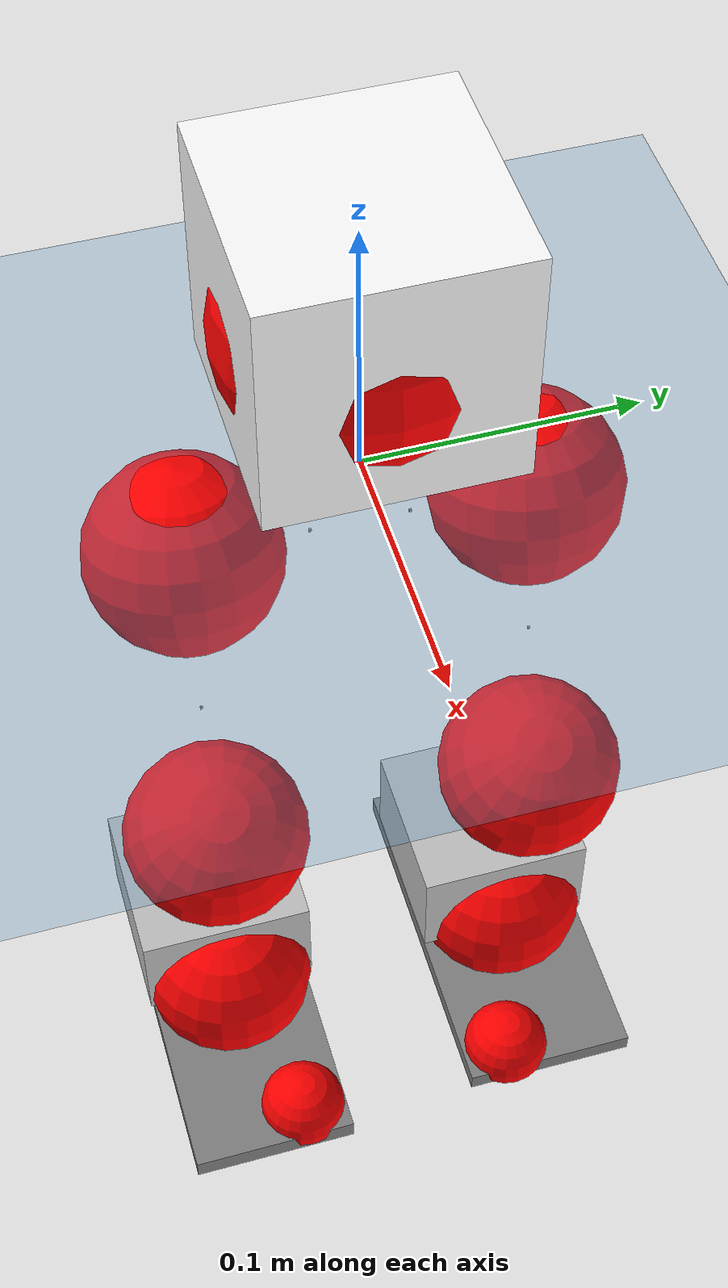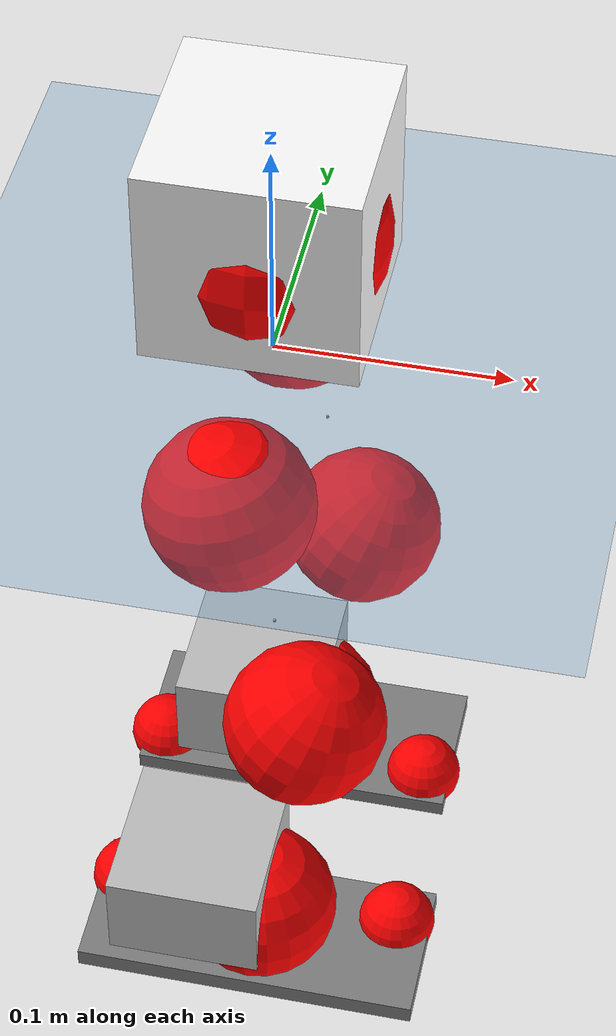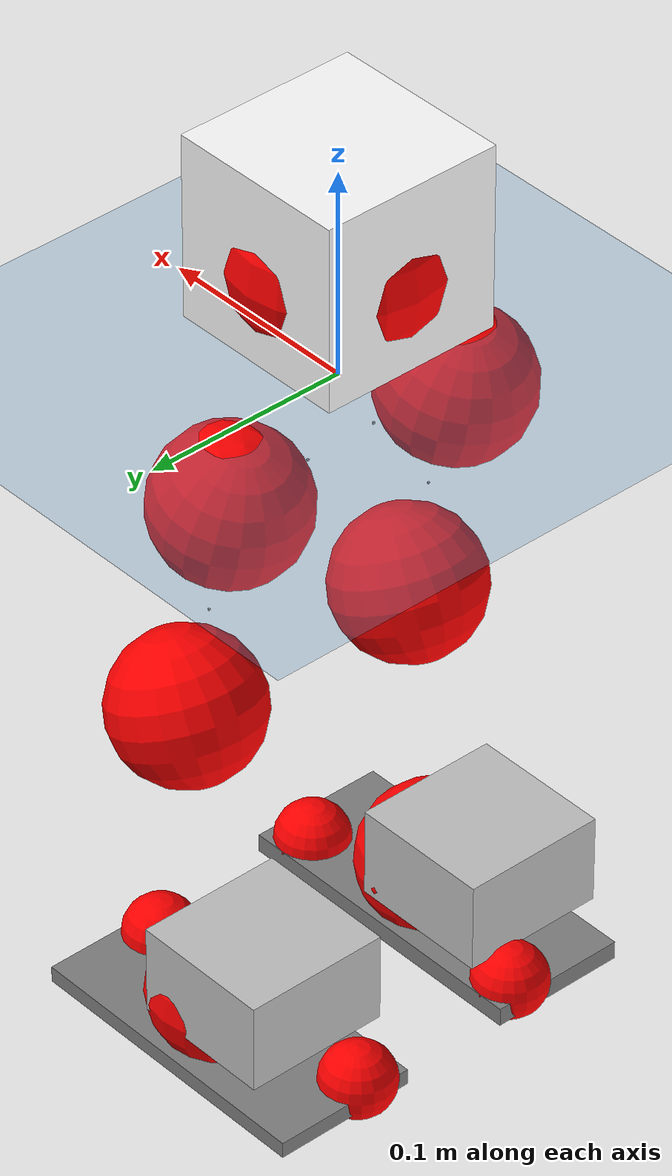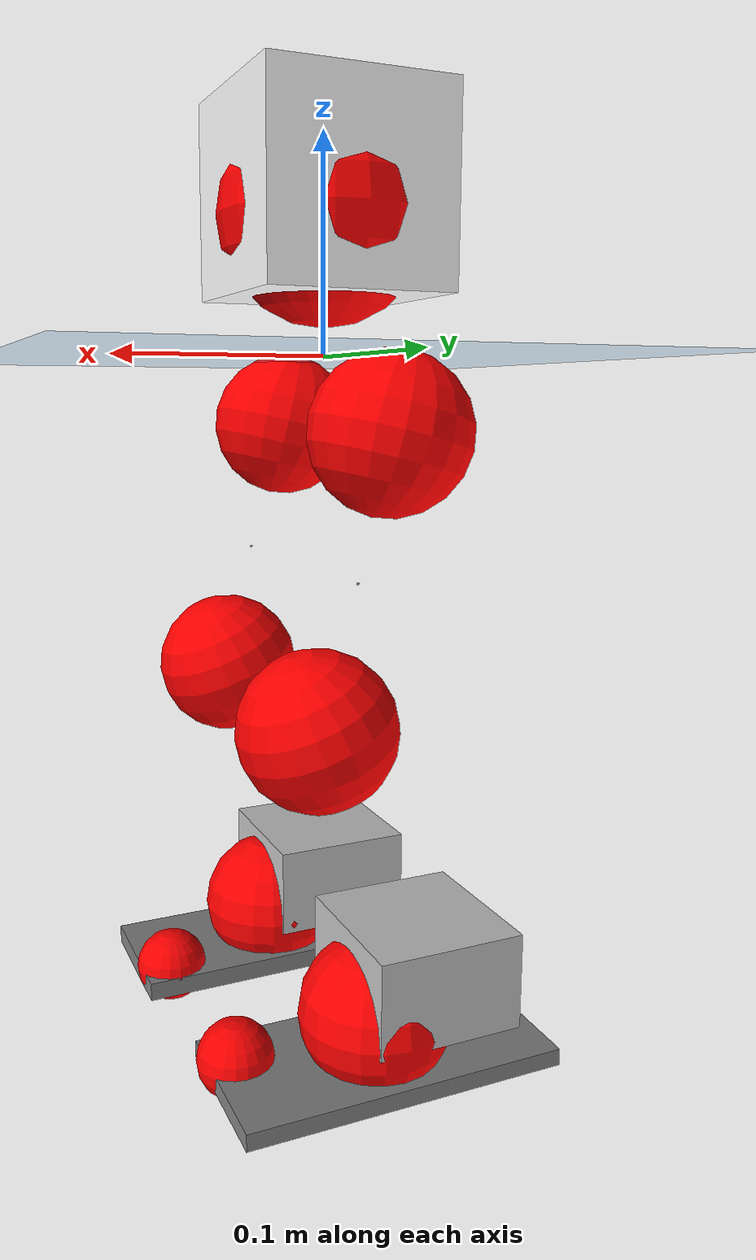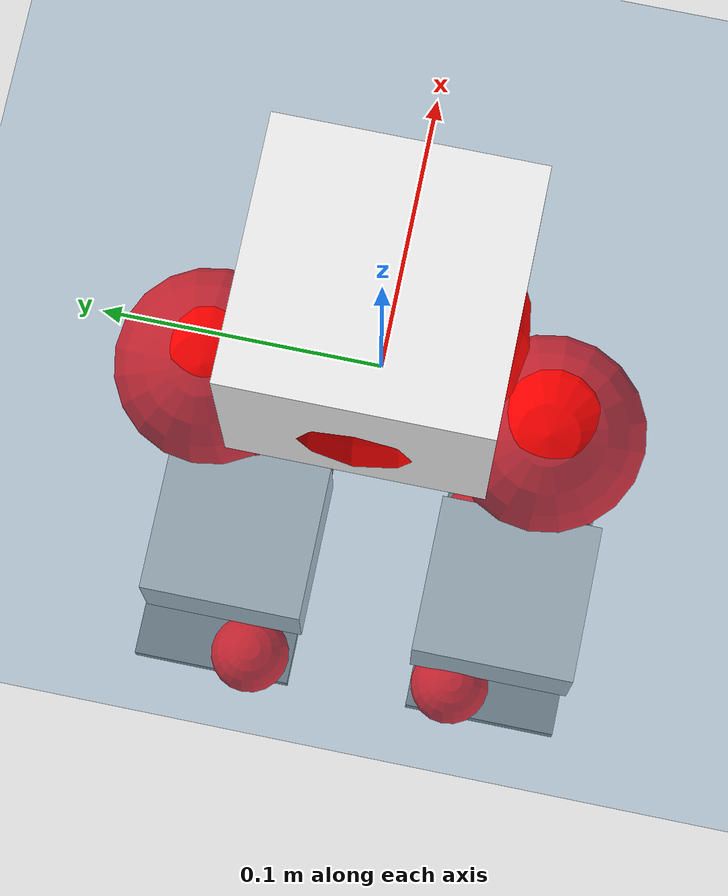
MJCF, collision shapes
<mujoco model="pi_12dof_release_v1">
  <compiler angle="radian" assetdir="assets" balanceinertia="true" inertiafromgeom="false"/>

  <option timestep="0.005" density="1.2" viscosity="2e-05"/>

  <size nkey="1"/>

  <visual>
    <quality shadowsize="8192"/>
    <map shadowclip="0.5"/>
  </visual>

  <default>
    <default class="/">
      <joint armature="0.01" damping="0.01" frictionloss="0.01"/>
      <geom contype="0" conaffinity="0" group="1" solref="-1000 -80"/>
      <site size="0.01 0.005 0.005" group="5"/>
      <general forcelimited="true" biastype="affine" gainprm="20" biasprm="0 -20 -0.5"/>
      <default class="foot">
        <geom size="0.0845 0.036 0.005" type="box" condim="6" group="4" priority="1" friction="0.9 0.2 0.2" solimp="0.015 1 0.005"/>
      </default>
      <default class="reward_collision_sphere">
        <geom group="5" rgba="1 0 0 1"/>
      </default>
    </default>
  </default>

  <asset>
    <texture type="skybox" colorspace="auto" name="//unnamed_texture_0" builtin="gradient" rgb1="0.95 0.95 0.95" rgb2="0.95 0.95 0.95" width="100" height="600"/>
    <texture type="2d" colorspace="auto" name="texplane" builtin="checker" rgb1="0.345 0.575 0.748" rgb2="0.345 0.575 0.748" markrgb="1 1 1" width="512" height="512"/>
    <material name="MatPlane" class="/" texture="texplane" texuniform="true" texrepeat="2 2" specular="0.9"/>
    <mesh name="baselink_1" class="/" file="baselink_1.STL"/>
    <mesh name="r_hip_pitch_link" class="/" file="r_hip_pitch_link.STL"/>
    <mesh name="r_hip_roll_link" class="/" file="r_hip_roll_link.STL"/>
    <mesh name="r_thigh_link" class="/" file="r_thigh_link.STL"/>
    <mesh name="r_calf_link" class="/" file="r_calf_link.STL"/>
    <mesh name="r_ankle_pitch_link" class="/" file="r_ankle_pitch_link.STL"/>
    <mesh name="r_ankle_roll_link" class="/" file="r_ankle_roll_link.STL"/>
    <mesh name="l_hip_pitch_link" class="/" file="l_hip_pitch_link.STL"/>
    <mesh name="l_hip_roll_link" class="/" file="l_hip_roll_link.STL"/>
    <mesh name="l_thigh_link" class="/" file="l_thigh_link.STL"/>
    <mesh name="l_calf_link" class="/" file="l_calf_link.STL"/>
    <mesh name="l_ankle_pitch_link" class="/" file="l_ankle_pitch_link.STL"/>
    <mesh name="l_ankle_roll_link" class="/" file="l_ankle_roll_link.STL"/>
  </asset>

  <worldbody>
    <geom name="floor" class="/" size="100 100 0.125" type="plane" group="0" material="MatPlane"/>
    <light name="toplight_shadow" class="/" pos="0 0 5" dir="0.0990148 0.0990148 -0.990148" type="directional" ambient="0.04 0.04 0.04" diffuse="0.55 0.55 0.55" specular="0.12 0.12 0.12"/>
    <light name="toplight_fill" class="/" pos="0 0 5" dir="0.0990148 0.0990148 -0.990148" type="directional" castshadow="false" ambient="0.04 0.04 0.04" diffuse="0.3 0.3 0.3" specular="0.08 0.08 0.08"/>
    <body name="trunk" pos="-0.000169457 9.25201e-05 -0.00204041" quat="1 -0.000191697 -0.00014277 7.51784e-06">
      <inertial pos="-0.000251826 -0.00337728 0.037437" quat="0.696416 0.0109159 0.0101876 0.717483" mass="1.54767" diaginertia="0.00816638 0.00322037 0.00282988"/>
      <joint name="//unnamed_joint_0" type="free"/>
      <geom name="//unnamed_geom_1" class="/" type="mesh" density="0" rgba="1 1 1 1" mesh="baselink_1"/>
      <geom name="//unnamed_geom_2" class="/" size="0.0447425 0.0447425 0.0447425" pos="0 0 0.0735111" type="box" rgba="1 1 1 1"/>
      <geom name="//unnamed_geom_3" class="reward_collision_sphere" size="0.0492168" pos="0 0 0.0643222"/>
      <site name="imu" class="/" pos="-0.0131445 0.0038931 0.0135149" size="0.0089485"/>
      <camera name="track" class="/" pos="0 -1.61724 0" quat="0.707107 0.707107 0 0" mode="trackcom"/>
      <camera name="ego_camera" class="/" pos="0.0717781 0 0.1654" quat="-0.5 -0.5 0.5 0.5"/>
      <body name="r_hip_pitch_link" pos="-0.0024859 -0.0173948 -0.0298988" quat="0.992219 0.000638195 -0.124506 0.000106245">
        <inertial pos="0.00370862 -0.0466206 -0.000163948" quat="-0.0223518 0.701474 -0.0272824 0.711822" mass="0.254387" diaginertia="8.36196e-05 3.35903e-05 5.36712e-05"/>
        <joint name="r_hip_pitch_joint" class="/" pos="0 0 0" axis="0.00493159 -0.999944 0.00939094" stiffness="0.0108857" range="-1.74969 1.19494" armature="0.00880063" damping="0.000144706" frictionloss="0.00913525"/>
        <geom name="//unnamed_geom_4" class="/" type="mesh" density="0" rgba="0.75294 0.75294 0.75294 1" mesh="r_hip_pitch_link"/>
        <geom name="//unnamed_geom_5" class="/" size="0.000447425 0.000447425 0.000447425" type="box" rgba="0.75294 0.75294 0.75294 1"/>
        <body name="r_hip_roll_link" pos="-0.00170352 -0.0446488 0.000346403" quat="1 -1.73082e-05 -2.57378e-05 -1.13074e-05">
          <inertial pos="-0.000644934 -0.000315772 -0.0536487" quat="0.70782 -0.077529 -0.0854811 0.696902" mass="0.284519" diaginertia="0.000259821 9.62771e-05 8.54291e-05"/>
          <joint name="r_hip_roll_joint" class="/" pos="0 0 0" axis="-0.999925 0.00649672 0.0103387" stiffness="0.00178807" range="-0.174967 0.490016" armature="0.00886462" damping="0.0102842" frictionloss="0.0099518"/>
          <geom name="//unnamed_geom_6" class="/" type="mesh" density="0" rgba="0.75294 0.75294 0.75294 1" mesh="r_hip_roll_link"/>
          <geom name="//unnamed_geom_7" class="/" size="0.000447425 0.000447425 0.000447425" type="box" rgba="0.75294 0.75294 0.75294 1"/>
          <geom name="//unnamed_geom_8" class="reward_collision_sphere" size="0.035794"/>
          <body name="r_thigh_link" pos="0.0021572 -0.00186658 -0.0660514" quat="0.999999 0.000813817 0.000312144 -0.000802189">
            <inertial pos="0.00103954 0.0012037 -0.0426803" quat="0.73569 0.677306 0.00408259 -0.00104854" mass="0.079145" diaginertia="9.88388e-05 3.25335e-05 3.79233e-05"/>
            <joint name="r_thigh_joint" class="/" pos="0 0 0" axis="-0.00526609 -0.0105862 -0.99993" range="-0.30829 0.58441" armature="0.00869653" damping="0.000617181" frictionloss="0.00852417"/>
            <geom name="//unnamed_geom_9" class="/" type="mesh" density="0" rgba="0.75294 0.75294 0.75294 1" mesh="r_thigh_link"/>
            <geom name="//unnamed_geom_10" class="/" size="0.000447425 0.000447425 0.000447425" type="box" rgba="0.75294 0.75294 0.75294 1"/>
            <body name="r_calf_link" pos="-0.00227734 -0.00126115 -0.0629902" quat="0.947576 -0.000110323 0.31953 0.000100134">
              <inertial pos="0.00230673 -0.000969523 -0.0639464" quat="0.99999 -0.00222536 0.000844381 0.00382441" mass="0.60226" diaginertia="0.00287241 0.00125385 0.000116987"/>
              <joint name="r_calf_joint" class="/" pos="0 0 0" axis="-0.00533186 -0.999986 0.000568335" range="-1.6504 0.670967" armature="0.0081286" damping="0.0170896" frictionloss="0.0086237"/>
              <geom name="//unnamed_geom_11" class="/" type="mesh" density="0" rgba="0.75294 0.75294 0.75294 1" mesh="r_calf_link"/>
              <geom name="//unnamed_geom_12" class="/" size="0.000447425 0.000447425 0.000447425" type="box" rgba="0.75294 0.75294 0.75294 1"/>
              <geom name="//unnamed_geom_13" class="reward_collision_sphere" size="0.035794"/>
              <body name="r_ankle_pitch_link" pos="5.45079e-05 0.00280381 -0.129695" quat="0.980093 6.18585e-05 -0.198538 9.54112e-05">
                <inertial pos="0.0047525 0.00193943 -6.42037e-05" quat="0.00489315 0.698779 0.00361667 0.715312" mass="0.118155" diaginertia="0.000239024 7.59847e-05 7.66688e-05"/>
                <joint name="r_ankle_pitch_joint" class="/" pos="0 0 0" axis="0.00431295 -0.999984 -0.0036961" range="-1.27646 0.47851" armature="0.00940868" damping="0" frictionloss="0.00887638"/>
                <geom name="//unnamed_geom_14" class="/" type="mesh" density="0" rgba="0.75294 0.75294 0.75294 1" mesh="r_ankle_pitch_link"/>
                <geom name="//unnamed_geom_15" class="/" size="0.0348992 0.035794 0.0223713" type="box" rgba="0.75294 0.75294 0.75294 1"/>
                <body name="r_ankle_roll_link" pos="0.0763819 0.000313138 0.000370414" quat="1 -6.16224e-06 -1.27032e-06 3.44482e-06">
                  <inertial pos="-0.0227388 -0.000308357 -0.0106068" quat="0.56025 0.435789 0.42996 0.557981" mass="0.375049" diaginertia="0.000876537 0.000344712 0.000186012"/>
                  <joint name="r_ankle_roll_joint" class="/" pos="0 0 0" axis="-0.999999 0.00114369 -0.000386454" range="-0.190272 0.152143" armature="0.0087361" damping="0" frictionloss="0.0101392"/>
                  <geom name="//unnamed_geom_16" class="/" type="mesh" density="0" rgba="0.75294 0.75294 0.75294 1" mesh="r_ankle_roll_link"/>
                  <geom name="//unnamed_geom_17" class="/" type="mesh" rgba="0.75294 0.75294 0.75294 1" mesh="r_ankle_roll_link"/>
                  <geom name="right_foot" class="foot" size="0.0790835 0.0339527 0.00458728" pos="-0.0488091 0 -0.0404311"/>
                  <geom name="//unnamed_geom_19" class="reward_collision_sphere" size="0.035794" pos="-0.0478521 0 -0.0183778"/>
                  <geom name="//unnamed_geom_20" class="reward_collision_sphere" size="0.017897" pos="0.0143556 0.0161724 -0.0367556"/>
                  <geom name="//unnamed_geom_21" class="reward_collision_sphere" size="0.017897" pos="-0.114845 0.0161724 -0.0367556"/>
                  <site name="right_foot" class="foot" pos="-0.0488091 0 -0.0404311" size="0.0089485"/>
                </body>
              </body>
            </body>
          </body>
        </body>
      </body>
      <body name="l_hip_pitch_link" pos="-0.00258395 0.018936 -0.0309012" quat="0.992195 -0.000107032 -0.124699 -0.000232906">
        <inertial pos="0.00146805 0.0460902 0.000368375" quat="-0.039933 0.707373 0.0223624 0.705357" mass="0.277787" diaginertia="0.000100171 3.6319e-05 6.16489e-05"/>
        <joint name="l_hip_pitch_joint" class="/" pos="0 0 0" axis="-0.00632098 0.99995 -0.00780069" range="-1.30205 1.72673" armature="0.0101498" damping="0.0014299" frictionloss="0.00941083"/>
        <geom name="//unnamed_geom_22" class="/" type="mesh" density="0" rgba="0.75294 0.75294 0.75294 1" mesh="l_hip_pitch_link"/>
        <geom name="//unnamed_geom_23" class="/" size="0.000447425 0.000447425 0.000447425" type="box" rgba="0.75294 0.75294 0.75294 1"/>
        <body name="l_hip_roll_link" pos="-0.00116893 0.0430194 -0.000363616" quat="1 3.75982e-05 -0.000146199 0.000106033">
          <inertial pos="-0.00149583 0.00236251 -0.0550094" quat="0.699192 -0.0752165 -0.0780277 0.706672" mass="0.278844" diaginertia="0.000266822 9.41358e-05 8.33968e-05"/>
          <joint name="l_hip_roll_joint" class="/" pos="0 0 0" axis="-0.999894 -0.0145067 0.0010286" range="-0.447349 0.149442" armature="0.00857632" damping="0.00349414" frictionloss="0.00774045"/>
          <geom name="//unnamed_geom_24" class="/" type="mesh" density="0" rgba="0.75294 0.75294 0.75294 1" mesh="l_hip_roll_link"/>
          <geom name="//unnamed_geom_25" class="/" size="0.000447425 0.000447425 0.000447425" type="box" rgba="0.75294 0.75294 0.75294 1"/>
          <geom name="//unnamed_geom_26" class="reward_collision_sphere" size="0.035794"/>
          <body name="l_thigh_link" pos="-0.00147843 -3.38244e-05 -0.0644657" quat="1 -5.13201e-05 1.59836e-05 -1.27562e-05">
            <inertial pos="0.000537963 -0.00187023 -0.044144" quat="0.667423 0.744654 -0.000405328 -0.00604951" mass="0.0804598" diaginertia="0.000100304 3.23896e-05 3.66021e-05"/>
            <joint name="l_thigh_joint" class="/" pos="0 0 0" axis="0.000480495 0.00150179 -0.999999" range="-0.63185 0.327629" armature="0.00931766" damping="0" frictionloss="0.00969739"/>
            <geom name="//unnamed_geom_27" class="/" type="mesh" density="0" rgba="0.75294 0.75294 0.75294 1" mesh="l_thigh_link"/>
            <geom name="//unnamed_geom_28" class="/" size="0.000447425 0.000447425 0.000447425" type="box" rgba="0.75294 0.75294 0.75294 1"/>
            <body name="l_calf_link" pos="0.00160445 -0.00215528 -0.0657848" quat="0.947984 0.000729665 0.318316 6.28954e-05">
              <inertial pos="-0.00240183 0.0020652 -0.0618599" quat="0.999982 -3.95887e-05 0.00300198 0.00513979" mass="0.576129" diaginertia="0.00279264 0.00120014 0.000109396"/>
              <joint name="l_calf_joint" class="/" pos="0 0 0" axis="6.08927e-05 1 -0.000422058" range="-0.655229 1.60342" armature="0.00777217" damping="0.00796936" frictionloss="0.00773561"/>
              <geom name="//unnamed_geom_29" class="/" type="mesh" density="0" rgba="0.75294 0.75294 0.75294 1" mesh="l_calf_link"/>
              <geom name="//unnamed_geom_30" class="/" size="0.000447425 0.000447425 0.000447425" type="box" rgba="0.75294 0.75294 0.75294 1"/>
              <geom name="//unnamed_geom_31" class="reward_collision_sphere" size="0.035794"/>
              <body name="l_ankle_pitch_link" pos="6.31587e-05 0.000683713 -0.126154" quat="0.980049 3.86151e-05 -0.198756 -7.32559e-06">
                <inertial pos="0.00693079 0.000305634 -0.000834278" quat="-0.00193728 0.707554 0.00251651 0.706652" mass="0.117973" diaginertia="0.00023129 7.47597e-05 7.49872e-05"/>
                <joint name="l_ankle_pitch_joint" class="/" pos="0 0 0" axis="0.0109704 0.999937 -0.00251172" stiffness="9.40803e-05" range="-0.511142 1.30131" armature="0.00909624" damping="0" frictionloss="0.010035"/>
                <geom name="//unnamed_geom_32" class="/" type="mesh" density="0" rgba="0.75294 0.75294 0.75294 1" mesh="l_ankle_pitch_link"/>
                <geom name="//unnamed_geom_33" class="/" size="0.0348992 0.035794 0.0223713" type="box" rgba="0.75294 0.75294 0.75294 1"/>
                <body name="l_ankle_roll_link" pos="0.0690924 0.00247727 -0.000725962" quat="1 -0.000306701 -0.000152265 -0.000160375">
                  <inertial pos="-0.0236997 -0.000570619 -0.0128668" quat="0.550172 0.429247 0.437946 0.5668" mass="0.369132" diaginertia="0.000894914 0.000368074 0.000186813"/>
                  <joint name="l_ankle_roll_joint" class="/" pos="0 0 0" axis="-1 -0.000118185 -2.76554e-05" range="-0.149505 0.152677" armature="0.00923852" damping="0.00655056" frictionloss="0.0077401"/>
                  <geom name="//unnamed_geom_34" class="/" type="mesh" density="0" rgba="0.75294 0.75294 0.75294 1" mesh="l_ankle_roll_link"/>
                  <geom name="//unnamed_geom_35" class="/" type="mesh" rgba="0.75294 0.75294 0.75294 1" mesh="l_ankle_roll_link"/>
                  <geom name="left_foot" class="foot" size="0.0761743 0.0355152 0.00397984" pos="-0.0488091 0 -0.0404311"/>
                  <geom name="//unnamed_geom_37" class="reward_collision_sphere" size="0.035794" pos="-0.0478521 0 -0.0183778"/>
                  <geom name="//unnamed_geom_38" class="reward_collision_sphere" size="0.017897" pos="0.0143556 -0.0161724 -0.0367556"/>
                  <geom name="//unnamed_geom_39" class="reward_collision_sphere" size="0.017897" pos="-0.114845 -0.0161724 -0.0367556"/>
                  <site name="left_foot" class="foot" pos="-0.0488091 0 -0.0404311" size="0.0089485"/>
                </body>
              </body>
            </body>
          </body>
        </body>
      </body>
    </body>
  </worldbody>

  <contact>
    <pair class="/" geom1="floor" geom2="right_foot" name="//unnamed_contact_1"/>
    <pair class="/" geom1="floor" geom2="left_foot" name="//unnamed_contact_0"/>
  </contact>

  <actuator>
    <general name="r_hip_pitch_joint" class="/" joint="r_hip_pitch_joint" forcerange="-18.5887 18.5887" gainprm="18.2382" biasprm="0 -18.2382 -0.478113"/>
    <general name="r_hip_roll_joint" class="/" joint="r_hip_roll_joint" forcerange="-16.9805 16.9805" gainprm="18.2382" biasprm="0 -18.2382 -0.478113"/>
    <general name="r_thigh_joint" class="/" joint="r_thigh_joint" forcerange="-20.4723 20.4723" gainprm="18.2382" biasprm="0 -18.2382 -0.478113"/>
    <general name="r_calf_joint" class="/" joint="r_calf_joint" forcerange="-18.3813 18.3813" gainprm="18.2382" biasprm="0 -18.2382 -0.478113"/>
    <general name="r_ankle_pitch_joint" class="/" joint="r_ankle_pitch_joint" forcerange="-16.9656 16.9656" gainprm="18.2382" biasprm="0 -18.2382 -0.478113"/>
    <general name="r_ankle_roll_joint" class="/" joint="r_ankle_roll_joint" forcerange="-18.7745 18.7745" gainprm="18.2382" biasprm="0 -18.2382 -0.478113"/>
    <general name="l_hip_pitch_joint" class="/" joint="l_hip_pitch_joint" forcerange="-19.3666 19.3666" gainprm="18.2382" biasprm="0 -18.2382 -0.478113"/>
    <general name="l_hip_roll_joint" class="/" joint="l_hip_roll_joint" forcerange="-17.9288 17.9288" gainprm="18.2382" biasprm="0 -18.2382 -0.478113"/>
    <general name="l_thigh_joint" class="/" joint="l_thigh_joint" forcerange="-19.4724 19.4724" gainprm="18.2382" biasprm="0 -18.2382 -0.478113"/>
    <general name="l_calf_joint" class="/" joint="l_calf_joint" forcerange="-17.6611 17.6611" gainprm="18.2382" biasprm="0 -18.2382 -0.478113"/>
    <general name="l_ankle_pitch_joint" class="/" joint="l_ankle_pitch_joint" forcerange="-19.0771 19.0771" gainprm="18.2382" biasprm="0 -18.2382 -0.478113"/>
    <general name="l_ankle_roll_joint" class="/" joint="l_ankle_roll_joint" forcerange="-16.8928 16.8928" gainprm="18.2382" biasprm="0 -18.2382 -0.478113"/>
  </actuator>

  <sensor>
    <gyro site="imu" name="imu_angular_velocity"/>
    <velocimeter site="imu" name="imu_linear_velocity"/>
    <framelinvel objtype="site" objname="left_foot" name="left_foot_global_linear_velocity"/>
    <framelinvel objtype="site" objname="right_foot" name="right_foot_global_linear_velocity"/>
  </sensor>

  <keyframe>
    <key name="home" qpos="0 0 0.291 1 0 0 0 0.4 0 0 -0.8 0.4 0 -0.4 0 0 0.8 -0.4 0"/>
  </keyframe>
</mujoco>
